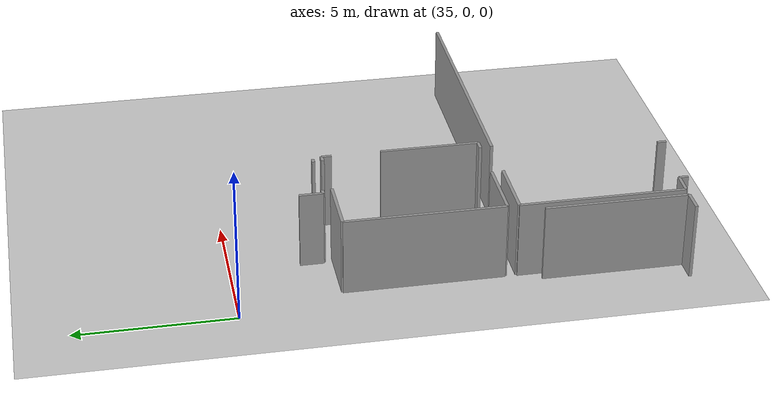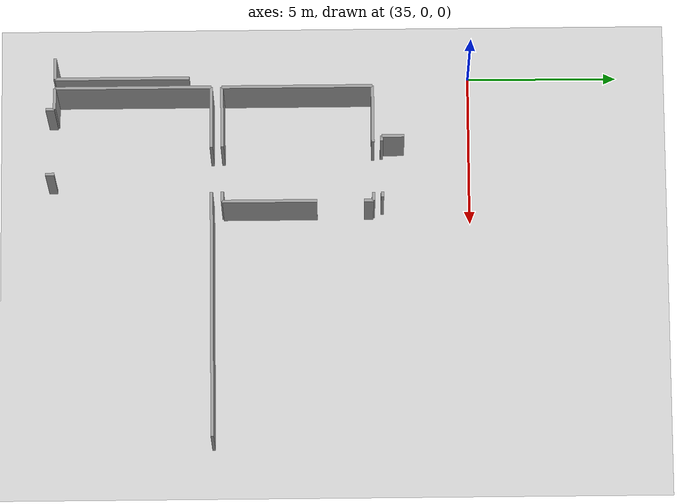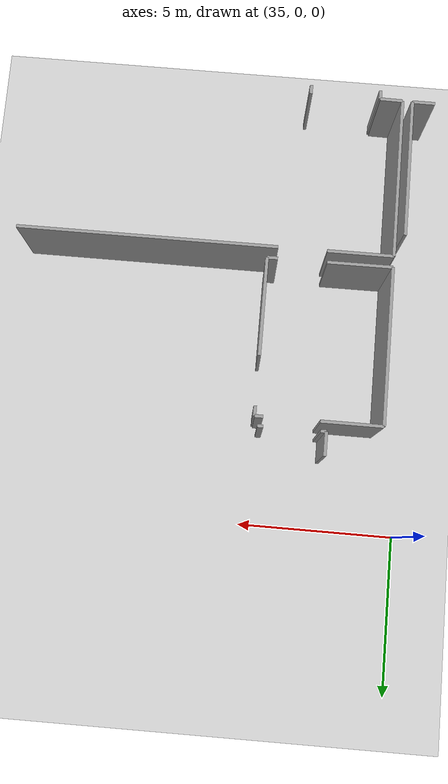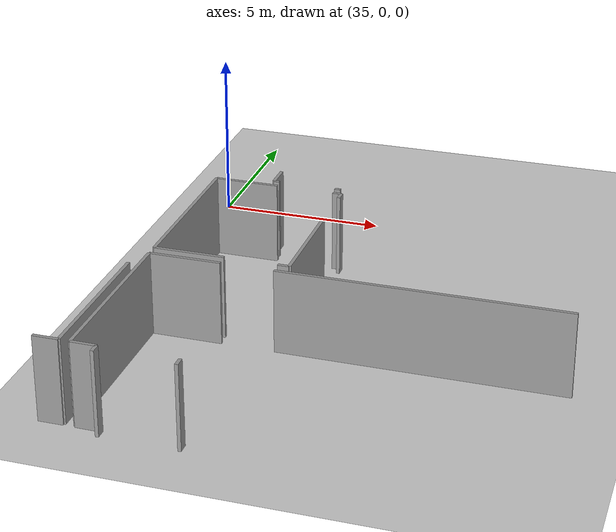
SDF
<sdf version="1.6">
 <world name="default">
  <model name="ground_plane">
   <static>1</static>
   <link name="link">
    <collision name="collision">
     <geometry><plane><normal>0 0 1</normal><size>100 100</size></plane></geometry>
     <surface><friction><ode><mu>100</mu><mu2>50</mu2></ode></friction></surface>
    </collision>
    <visual name="visual">
     <cast_shadows>0</cast_shadows>
     <geometry><plane><normal>0 0 1</normal><size>100 100</size></plane></geometry>
     <material>
      <script><uri>file://media/materials/scripts/gazebo.material</uri><name>Gazebo/Grey</name></script>
     </material>
    </visual>
   </link>
  </model>
  <model name="0510032270_A_40_1_104">
   <static>1</static>
   <link name="Wall_339">
    <collision name="Wall_339_Collision">
     <geometry><box><size>4.48670216145 0.1 2.5</size></box></geometry>
     <pose>2.24335108073 0 1.25 0 0 0</pose>
    </collision>
    <visual name="Wall_339_Visual">
     <pose>2.24335108073 0 1.25 0 0 0</pose>
     <geometry><box><size>4.48670216145 0.1 2.5</size></box></geometry>
     <material>
      <script><uri>file://media/materials/scripts/gazebo.material</uri><name>Gazebo/Grey</name></script>
      <ambient>1 1 1 1</ambient>
     </material>
    </visual>
    <pose>83.3102913707 -24.5638334371 0 0 0 -1.57079632679</pose>
   </link>
   <link name="Wall_340">
    <collision name="Wall_340_Collision">
     <geometry><box><size>0.720611967419 0.1 2.5</size></box></geometry>
     <pose>0.36030598371 0 1.25 0 0 0</pose>
    </collision>
    <visual name="Wall_340_Visual">
     <pose>0.36030598371 0 1.25 0 0 0</pose>
     <geometry><box><size>0.720611967419 0.1 2.5</size></box></geometry>
     <material>
      <script><uri>file://media/materials/scripts/gazebo.material</uri><name>Gazebo/Grey</name></script>
      <ambient>1 1 1 1</ambient>
     </material>
    </visual>
    <pose>83.3102913707 -29.0505355986 0 0 0 3.14159265359</pose>
   </link>
   <link name="Wall_350">
    <collision name="Wall_350_Collision">
     <geometry><box><size>5.02255486232 0.1 2.5</size></box></geometry>
     <pose>2.51127743116 0 1.25 0 0 0</pose>
    </collision>
    <visual name="Wall_350_Visual">
     <pose>2.51127743116 0 1.25 0 0 0</pose>
     <geometry><box><size>5.02255486232 0.1 2.5</size></box></geometry>
     <material>
      <script><uri>file://media/materials/scripts/gazebo.material</uri><name>Gazebo/Grey</name></script>
      <ambient>1 1 1 1</ambient>
     </material>
    </visual>
    <pose>83.6339377613 -23.4828519512 0 0 0 1.57079632679</pose>
   </link>
   <link name="Wall_351">
    <collision name="Wall_351_Collision">
     <geometry><box><size>1.93349174683 0.1 2.5</size></box></geometry>
     <pose>0.966745873413 0 1.25 0 0 0</pose>
    </collision>
    <visual name="Wall_351_Visual">
     <pose>0.966745873413 0 1.25 0 0 0</pose>
     <geometry><box><size>1.93349174683 0.1 2.5</size></box></geometry>
     <material>
      <script><uri>file://media/materials/scripts/gazebo.material</uri><name>Gazebo/Grey</name></script>
      <ambient>1 1 1 1</ambient>
     </material>
    </visual>
    <pose>83.6339377613 -18.4602970888 0 0 0 0.0</pose>
   </link>
   <link name="Wall_352">
    <collision name="Wall_352_Collision">
     <geometry><box><size>0.265321422672 0.1 2.5</size></box></geometry>
     <pose>0.132660711336 0 1.25 0 0 0</pose>
    </collision>
    <visual name="Wall_352_Visual">
     <pose>0.132660711336 0 1.25 0 0 0</pose>
     <geometry><box><size>0.265321422672 0.1 2.5</size></box></geometry>
     <material>
      <script><uri>file://media/materials/scripts/gazebo.material</uri><name>Gazebo/Grey</name></script>
      <ambient>1 1 1 1</ambient>
     </material>
    </visual>
    <pose>87.3044715809 -18.4602970888 0 0 0 0.0</pose>
   </link>
   <link name="Wall_353">
    <collision name="Wall_353_Collision">
     <geometry><box><size>0.309541659784 0.1 2.5</size></box></geometry>
     <pose>0.154770829892 0 1.25 0 0 0</pose>
    </collision>
    <visual name="Wall_353_Visual">
     <pose>0.154770829892 0 1.25 0 0 0</pose>
     <geometry><box><size>0.309541659784 0.1 2.5</size></box></geometry>
     <material>
      <script><uri>file://media/materials/scripts/gazebo.material</uri><name>Gazebo/Grey</name></script>
      <ambient>1 1 1 1</ambient>
     </material>
    </visual>
    <pose>87.5697930035 -18.4602970888 0 0 0 -1.57079632679</pose>
   </link>
   <link name="Wall_354">
    <collision name="Wall_354_Collision">
     <geometry><box><size>3.13925562601 0.1 2.5</size></box></geometry>
     <pose>1.569627813 0 1.25 0 0 0</pose>
    </collision>
    <visual name="Wall_354_Visual">
     <pose>1.569627813 0 1.25 0 0 0</pose>
     <geometry><box><size>3.13925562601 0.1 2.5</size></box></geometry>
     <material>
      <script><uri>file://media/materials/scripts/gazebo.material</uri><name>Gazebo/Grey</name></script>
      <ambient>1 1 1 1</ambient>
     </material>
    </visual>
    <pose>87.5697930035 -20.3372428428 0 0 0 -1.57079632679</pose>
   </link>
   <link name="Wall_355">
    <collision name="Wall_355_Collision">
     <geometry><box><size>0.334828519512 0.1 2.5</size></box></geometry>
     <pose>0.167414259756 0 1.25 0 0 0</pose>
    </collision>
    <visual name="Wall_355_Visual">
     <pose>0.167414259756 0 1.25 0 0 0</pose>
     <geometry><box><size>0.334828519512 0.1 2.5</size></box></geometry>
     <material>
      <script><uri>file://media/materials/scripts/gazebo.material</uri><name>Gazebo/Grey</name></script>
      <ambient>1 1 1 1</ambient>
     </material>
    </visual>
    <pose>87.5697930035 -23.4764984688 0 0 0 3.14159265359</pose>
   </link>
   <link name="Wall_356">
    <collision name="Wall_356_Collision">
     <geometry><box><size>2.05917342929 0.1 2.5</size></box></geometry>
     <pose>1.02958671465 0 1.25 0 0 0</pose>
    </collision>
    <visual name="Wall_356_Visual">
     <pose>1.02958671465 0 1.25 0 0 0</pose>
     <geometry><box><size>2.05917342929 0.1 2.5</size></box></geometry>
     <material>
      <script><uri>file://media/materials/scripts/gazebo.material</uri><name>Gazebo/Grey</name></script>
      <ambient>1 1 1 1</ambient>
     </material>
    </visual>
    <pose>85.6931013889 -23.4764984688 0 0 0 -3.13850719593</pose>
   </link>
   <link name="Wall_357">
    <collision name="Wall_357_Collision">
     <geometry><box><size>5.21366761122 0.1 2.5</size></box></geometry>
     <pose>2.60683380561 0 1.25 0 0 0</pose>
    </collision>
    <visual name="Wall_357_Visual">
     <pose>2.60683380561 0 1.25 0 0 0</pose>
     <geometry><box><size>5.21366761122 0.1 2.5</size></box></geometry>
     <material>
      <script><uri>file://media/materials/scripts/gazebo.material</uri><name>Gazebo/Grey</name></script>
      <ambient>1 1 1 1</ambient>
     </material>
    </visual>
    <pose>83.6275842789 -29.056507872 0 0 0 1.57079632679</pose>
   </link>
   <link name="Wall_358">
    <collision name="Wall_358_Collision">
     <geometry><box><size>2.08483169625 0.1 2.5</size></box></geometry>
     <pose>1.04241584813 0 1.25 0 0 0</pose>
    </collision>
    <visual name="Wall_358_Visual">
     <pose>1.04241584813 0 1.25 0 0 0</pose>
     <geometry><box><size>2.08483169625 0.1 2.5</size></box></geometry>
     <material>
      <script><uri>file://media/materials/scripts/gazebo.material</uri><name>Gazebo/Grey</name></script>
      <ambient>1 1 1 1</ambient>
     </material>
    </visual>
    <pose>83.6275842789 -23.8428402607 0 0 0 0.0</pose>
   </link>
   <link name="Wall_359">
    <collision name="Wall_359_Collision">
     <geometry><box><size>8.24872612679 0.1 2.5</size></box></geometry>
     <pose>4.1243630634 0 1.25 0 0 0</pose>
    </collision>
    <visual name="Wall_359_Visual">
     <pose>4.1243630634 0 1.25 0 0 0</pose>
     <geometry><box><size>8.24872612679 0.1 2.5</size></box></geometry>
     <material>
      <script><uri>file://media/materials/scripts/gazebo.material</uri><name>Gazebo/Grey</name></script>
      <ambient>1 1 1 1</ambient>
     </material>
    </visual>
    <pose>87.2503399113 -23.8428402607 0 0 0 0.0</pose>
   </link>
   <link name="Wall_368">
    <collision name="Wall_368_Collision">
     <geometry><box><size>0.289845864518 0.1 2.5</size></box></geometry>
     <pose>0.144922932259 0 1.25 0 0 0</pose>
    </collision>
    <visual name="Wall_368_Visual">
     <pose>0.144922932259 0 1.25 0 0 0</pose>
     <geometry><box><size>0.289845864518 0.1 2.5</size></box></geometry>
     <material>
      <script><uri>file://media/materials/scripts/gazebo.material</uri><name>Gazebo/Grey</name></script>
      <ambient>1 1 1 1</ambient>
     </material>
    </visual>
    <pose>86.5857656582 -29.0680712098 0 0 0 -1.57079632679</pose>
   </link>
   <link name="Wall_369">
    <collision name="Wall_369_Collision">
     <geometry><box><size>0.290735352046 0.1 2.5</size></box></geometry>
     <pose>0.145367676023 0 1.25 0 0 0</pose>
    </collision>
    <visual name="Wall_369_Visual">
     <pose>0.145367676023 0 1.25 0 0 0</pose>
     <geometry><box><size>0.290735352046 0.1 2.5</size></box></geometry>
     <material>
      <script><uri>file://media/materials/scripts/gazebo.material</uri><name>Gazebo/Grey</name></script>
      <ambient>1 1 1 1</ambient>
     </material>
    </visual>
    <pose>84.3503564304 -29.3579170743 0 0 0 1.57079632679</pose>
   </link>
   <link name="Wall_370">
    <collision name="Wall_370_Collision">
     <geometry><box><size>0.72285096247 0.1 2.5</size></box></geometry>
     <pose>0.361425481235 0 1.25 0 0 0</pose>
    </collision>
    <visual name="Wall_370_Visual">
     <pose>0.361425481235 0 1.25 0 0 0</pose>
     <geometry><box><size>0.72285096247 0.1 2.5</size></box></geometry>
     <material>
      <script><uri>file://media/materials/scripts/gazebo.material</uri><name>Gazebo/Grey</name></script>
      <ambient>1 1 1 1</ambient>
     </material>
    </visual>
    <pose>84.3503564304 -29.0671817223 0 0 0 3.12682579455</pose>
   </link>
   <link name="Wall_540">
    <collision name="Wall_540_Collision">
     <geometry><box><size>0.182853221851 0.1 2.5</size></box></geometry>
     <pose>0.0914266109255 0 1.25 0 0 0</pose>
    </collision>
    <visual name="Wall_540_Visual">
     <pose>0.0914266109255 0 1.25 0 0 0</pose>
     <geometry><box><size>0.182853221851 0.1 2.5</size></box></geometry>
     <material>
      <script><uri>file://media/materials/scripts/gazebo.material</uri><name>Gazebo/Grey</name></script>
      <ambient>1 1 1 1</ambient>
     </material>
    </visual>
    <pose>87.4622920823 -18.1630811848 0 0 0 3.14159265359</pose>
   </link>
   <link name="Wall_541">
    <collision name="Wall_541_Collision">
     <geometry><box><size>0.174466625157 0.1 2.5</size></box></geometry>
     <pose>0.0872333125786 0 1.25 0 0 0</pose>
    </collision>
    <visual name="Wall_541_Visual">
     <pose>0.0872333125786 0 1.25 0 0 0</pose>
     <geometry><box><size>0.174466625157 0.1 2.5</size></box></geometry>
     <material>
      <script><uri>file://media/materials/scripts/gazebo.material</uri><name>Gazebo/Grey</name></script>
      <ambient>1 1 1 1</ambient>
     </material>
    </visual>
    <pose>85.5389659072 -18.1630811848 0 0 0 3.14159265359</pose>
   </link>
   <link name="Wall_542">
    <collision name="Wall_542_Collision">
     <geometry><box><size>0.75187110055 0.1 2.5</size></box></geometry>
     <pose>0.375935550275 0 1.25 0 0 0</pose>
    </collision>
    <visual name="Wall_542_Visual">
     <pose>0.375935550275 0 1.25 0 0 0</pose>
     <geometry><box><size>0.75187110055 0.1 2.5</size></box></geometry>
     <material>
      <script><uri>file://media/materials/scripts/gazebo.material</uri><name>Gazebo/Grey</name></script>
      <ambient>1 1 1 1</ambient>
     </material>
    </visual>
    <pose>85.3644992821 -18.1630811848 0 0 0 1.57079632679</pose>
   </link>
   <pose>-47.8 15.2142705567 0 0 0 0</pose>
  </model>
 </world>
</sdf>
